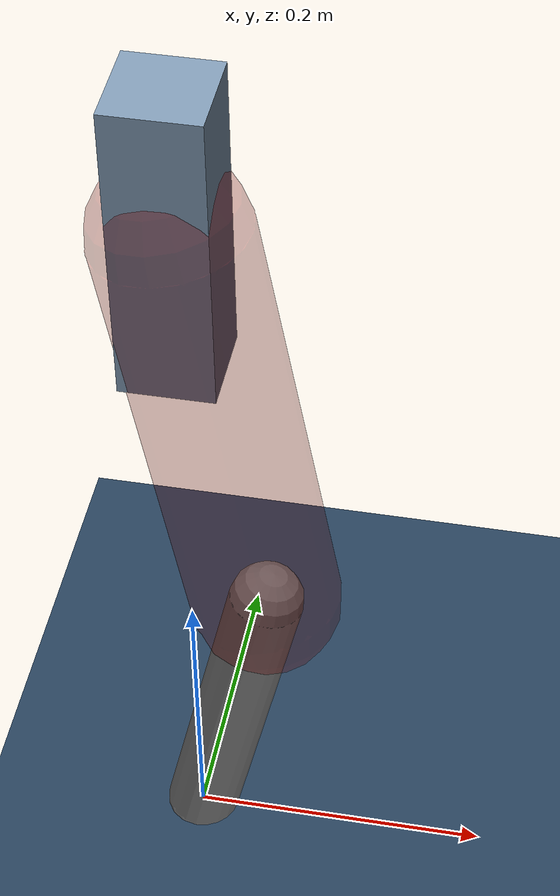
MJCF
<mujoco model="Hopper2D">
	<compiler inertiafromgeom="true" angle="radian" />
	<option timestep="0.001" integrator="implicit" cone="elliptic" solver="Newton" tolerance="1e-10" />

	<default>
		<geom contype="1" conaffinity="1" condim="3" friction="2 0.005 0.0001" solref="0.005 1" />
		<joint limited="true" damping="0.1" />
	</default>

	<asset>
		<texture name="skybox" type="skybox" builtin="gradient" rgb1=".4 .6 .8" rgb2="0 0 0" width="800" height="800" />
		<texture name="grid" type="2d" builtin="checker" rgb1=".1 .2 .3" rgb2=".2 .3 .4" width="300" height="300" mark="edge" markrgb=".2 .3 .4" />
		<material name="ground" texture="grid" texrepeat="1 1" texuniform="true" reflectance="0.1" />
		<material name="leg" rgba="0.5 0.6 0.7 1" />
	</asset>

	<worldbody>

		<geom name="floor" type="plane" size="5 5 0.25" material="ground" />

		<light directional="false" diffuse="0.8 0.8 0.8" specular="0.3 0.3 0.3" pos="0 0 2" dir="0 0 -1" />
		<light mode="targetbodycom" target="base" directional="false" diffuse="0.8 0.8 0.8" specular="0.3 0.3 0.3" pos="0 0 2" dir="0 0 -1" />

		<camera name="fixed" pos="0 -2 1" xyaxes="1 0 0 0 0 1" />
		<camera name="tracking" mode="trackcom" pos="0 -3 1" />

		<body name="root" pos="0 0 0.5207755198101016">
			<joint name="slide_x" type="slide" axis="1 0 0" range="-100 100" />
			<joint name="slide_z" type="slide" axis="0 0 1" range="0 10" />

			<body name="base" pos="0 0 0">
				<geom name="torso" type="box" size="0.03 0.03 0.1" mass="4.904" material="leg" />

				<body name="link1" pos="0 0 0" euler="0 1.4022248321981516 0">
					<joint type="hinge" axis="0 -1 0" pos="0 0 0" name="hinge1" limited="true" range="-3.14 3.14" stiffness="0" damping="0.1" />
					<geom name="thigh" type="capsule" fromto="0 0 0 0.302486853719905 0 0" size="0.05" rgba="0.5 0 0 0.3" mass="0.9954631904157341" />

					<body name="link2" pos="0.302486853719905 0 0" euler="0 0.39274857749423675 0">
						<joint type="hinge" axis="0 -1 0" pos="0 0 0" name="hinge2" limited="true" range="-3.14 3.14" stiffness="0" damping="0.1" />
						<geom name="shank" type="capsule" fromto="0 0 0 0.22828866609019657 0 0" size="0.025" mass="0.42455979948117695" />

					</body>
				</body>
			</body>
		</body>
	</worldbody>

	<actuator>
		<motor name="torque1" joint="hinge1" ctrlrange="-259.9064859278264 259.9064859278264" ctrllimited="true" gear="1" />
		<motor name="torque2" joint="hinge2" ctrlrange="-145.27251407680444 145.27251407680444" ctrllimited="true" gear="1" />
	</actuator>
</mujoco>
